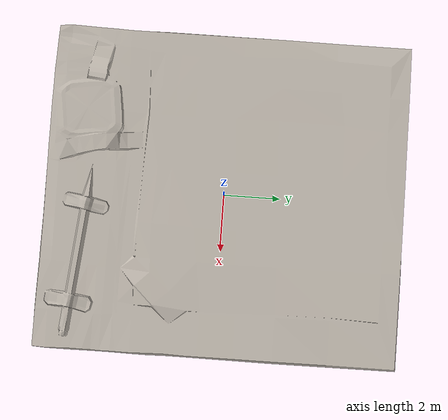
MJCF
<?xml version="1.0" ?>
<mujoco model="1b418690fedc45739274d05e81b88ffd">
  <asset>
    <texture type="2d" name="material" file="material.png"/>
    <material name="material" texture="material" specular="0.4000000000000001" shininess="0.001"/>
    <mesh file="1b418690fedc45739274d05e81b88ffd/1b418690fedc45739274d05e81b88ffd.obj" scale="0.45440775522568916 0.45440775522568916 0.45440775522568916"/>
    <mesh file="1b418690fedc45739274d05e81b88ffd/1b418690fedc45739274d05e81b88ffd_collision_0.obj" scale="0.45440775522568916 0.45440775522568916 0.45440775522568916"/>
    <mesh file="1b418690fedc45739274d05e81b88ffd/1b418690fedc45739274d05e81b88ffd_collision_1.obj" scale="0.45440775522568916 0.45440775522568916 0.45440775522568916"/>
  </asset>
  <worldbody>
    <body name="1b418690fedc45739274d05e81b88ffd">
      <inertial pos="0 0 0.3750" mass="0.02" diaginertia="0.272503 0.223097 0.493725"/>
      <geom material="material" mesh="1b418690fedc45739274d05e81b88ffd" class="visual"/>
      <geom mesh="1b418690fedc45739274d05e81b88ffd_collision_0" rgba="0.29127880046066346 0.03708224313377417 0.49696200371128385 1" class="collision"/>
      <geom mesh="1b418690fedc45739274d05e81b88ffd_collision_1" rgba="0.4993702048339598 0.7008758062068747 0.3221865547205278 1" class="collision"/>
      <site class="grasppoint" pos="0 0 0.6000"/>
      <site class="grasppoint" pos="0 0 0.6562"/>
      <site class="grasppoint" pos="0 0 0.7125"/>
    </body>
  </worldbody>
  <compiler boundmass="0.015" boundinertia="1e-05" angle="radian"/>
  <default>
    <default class="visual">
      <geom group="2" type="mesh" contype="0" conaffinity="0" density="50"/>
    </default>
    <default class="collision">
      <geom group="3" type="mesh" density="50" friction="1.5 0.1 0.1" solimp="0.9 0.95 0.001" solref="0.02 1"/>
    </default>
    <default class="grasppoint">
      <site type="sphere" size="0.005" group="4" rgba="0 0 1 1"/>
    </default>
  </default>
</mujoco>
